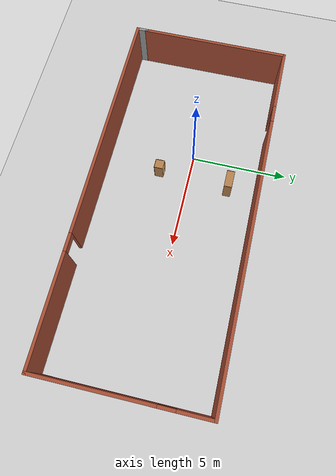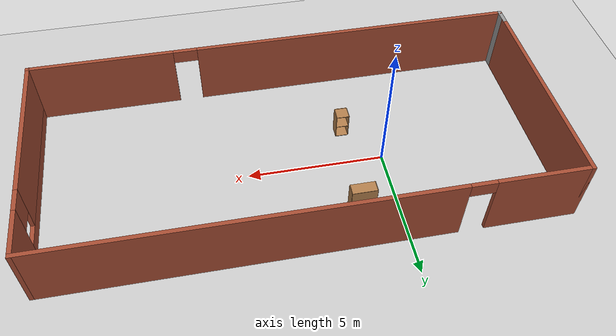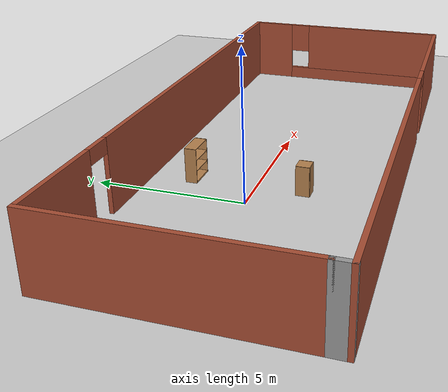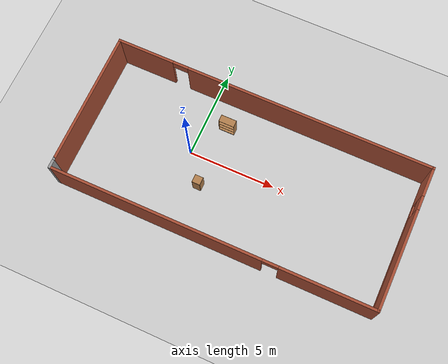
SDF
<sdf version="1.7">
 <world name="default">
  <light name="sun" type="directional">
   <pose>0 0 10 0 -0 0</pose>
   <diffuse>0.8 0.8 0.8 1</diffuse>
   <specular>0.2 0.2 0.2 1</specular>
   <attenuation>
    <range>1000</range>
    <constant>0.9</constant>
    <linear>0.01</linear>
    <quadratic>0.001</quadratic>
   </attenuation>
   <direction>-0.5 0.1 -0.9</direction>
   <spot><inner_angle>0</inner_angle><outer_angle>0</outer_angle><falloff>0</falloff></spot>
  </light>
  <model name="ground_plane">
   <static>1</static>
   <link name="link">
    <collision name="collision">
     <geometry><plane><normal>0 0 1</normal><size>100 100</size></plane></geometry>
     <surface><friction><ode><mu>100</mu><mu2>50</mu2></ode></friction></surface>
    </collision>
    <visual name="visual">
     <cast_shadows>0</cast_shadows>
     <geometry><plane><normal>0 0 1</normal><size>100 100</size></plane></geometry>
     <material>
      <script><uri>file://media/materials/scripts/gazebo.material</uri><name>Gazebo/Grey</name></script>
     </material>
    </visual>
   </link>
  </model>
  <gravity>0 0 -9.8</gravity>
  <magnetic_field>6e-06 2.3e-05 -4.2e-05</magnetic_field>
  <atmosphere type="adiabatic"/>
  <physics type="ode">
   <max_step_size>0.001</max_step_size>
   <real_time_factor>1</real_time_factor>
   <real_time_update_rate>1000</real_time_update_rate>
  </physics>
  <scene><ambient>0.4 0.4 0.4 1</ambient><background>0.7 0.7 0.7 1</background><shadows>1</shadows></scene>
  <audio><device>default</device></audio>
  <spherical_coordinates>
   <surface_model>EARTH_WGS84</surface_model>
   <latitude_deg>0</latitude_deg>
   <longitude_deg>0</longitude_deg>
   <elevation>0</elevation>
   <heading_deg>0</heading_deg>
  </spherical_coordinates>
  <model name="test">
   <pose>3.30211 -0.427776 0 0 -0 0</pose>
   <link name="Wall_3">
    <collision name="Wall_3_Collision">
     <geometry><box><size>7.75 0.15 2.5</size></box></geometry>
     <pose>0 0 1.25 0 -0 0</pose>
    </collision>
    <visual name="Wall_3_Visual">
     <pose>0 0 1.25 0 -0 0</pose>
     <geometry><box><size>7.75 0.15 2.5</size></box></geometry>
     <material>
      <script><uri>file://media/materials/scripts/gazebo.material</uri><name>Gazebo/Bricks</name></script>
      <ambient>1 1 1 1</ambient>
     </material>
     <meta><layer>0</layer></meta>
    </visual>
    <pose>-9.175 0.25 0 0 -0 1.5708</pose>
   </link>
   <link name="Wall_4">
    <pose>-0 4.05 0 0 -0 0</pose>
    <visual name="Wall_4_Visual_0">
     <pose>-7.57975 0 1.25 0 -0 0</pose>
     <geometry><box><size>3.3405 0.15 2.5</size></box></geometry>
     <material>
      <script><uri>file://media/materials/scripts/gazebo.material</uri><name>Gazebo/Bricks</name></script>
      <ambient>1 1 1 1</ambient>
     </material>
     <meta><layer>0</layer></meta>
    </visual>
    <collision name="Wall_4_Collision_0">
     <geometry><box><size>3.3405 0.15 2.5</size></box></geometry>
     <pose>-7.57975 0 1.25 0 -0 0</pose>
    </collision>
    <visual name="Wall_4_Visual_1">
     <pose>2.12025 0 1.25 0 -0 0</pose>
     <geometry><box><size>14.2595 0.15 2.5</size></box></geometry>
     <material>
      <script><uri>file://media/materials/scripts/gazebo.material</uri><name>Gazebo/Bricks</name></script>
      <ambient>1 1 1 1</ambient>
     </material>
     <meta><layer>0</layer></meta>
    </visual>
    <collision name="Wall_4_Collision_1">
     <geometry><box><size>14.2595 0.15 2.5</size></box></geometry>
     <pose>2.12025 0 1.25 0 -0 0</pose>
    </collision>
    <visual name="Wall_4_Visual_2">
     <pose>-5.4595 0 2.25 0 -0 0</pose>
     <geometry><box><size>0.9 0.15 0.5</size></box></geometry>
     <material>
      <script><uri>file://media/materials/scripts/gazebo.material</uri><name>Gazebo/Bricks</name></script>
      <ambient>1 1 1 1</ambient>
     </material>
     <meta><layer>0</layer></meta>
    </visual>
    <collision name="Wall_4_Collision_2">
     <geometry><box><size>0.9 0.15 0.5</size></box></geometry>
     <pose>-5.4595 0 2.25 0 -0 0</pose>
    </collision>
   </link>
   <link name="Wall_5">
    <pose>9.175 0 0 0 -0 -1.5708</pose>
    <visual name="Wall_5_Visual_0">
     <pose>-3.26118 0 1.25 0 -0 0</pose>
     <geometry><box><size>1.72765 0.15 2.5</size></box></geometry>
     <material>
      <script><uri>file://media/materials/scripts/gazebo.material</uri><name>Gazebo/Bricks</name></script>
      <ambient>1 1 1 1</ambient>
     </material>
     <meta><layer>0</layer></meta>
    </visual>
    <collision name="Wall_5_Collision_0">
     <geometry><box><size>1.72765 0.15 2.5</size></box></geometry>
     <pose>-3.26118 0 1.25 0 -0 0</pose>
    </collision>
    <visual name="Wall_5_Visual_1">
     <pose>0.863823 0 0.25 0 -0 0</pose>
     <geometry><box><size>6.52235 0.15 0.5</size></box></geometry>
     <material>
      <script><uri>file://media/materials/scripts/gazebo.material</uri><name>Gazebo/Bricks</name></script>
      <ambient>1 1 1 1</ambient>
     </material>
     <meta><layer>0</layer></meta>
    </visual>
    <collision name="Wall_5_Collision_1">
     <geometry><box><size>6.52235 0.15 0.5</size></box></geometry>
     <pose>0.863823 0 0.25 0 -0 0</pose>
    </collision>
    <visual name="Wall_5_Visual_2">
     <pose>1.26382 0 1.5 0 -0 0</pose>
     <geometry><box><size>5.72235 0.15 2</size></box></geometry>
     <material>
      <script><uri>file://media/materials/scripts/gazebo.material</uri><name>Gazebo/Bricks</name></script>
      <ambient>1 1 1 1</ambient>
     </material>
     <meta><layer>0</layer></meta>
    </visual>
    <collision name="Wall_5_Collision_2">
     <geometry><box><size>5.72235 0.15 2</size></box></geometry>
     <pose>1.26382 0 1.5 0 -0 0</pose>
    </collision>
    <visual name="Wall_5_Visual_3">
     <pose>-1.99735 0 1.9 0 -0 0</pose>
     <geometry><box><size>0.8 0.15 1.2</size></box></geometry>
     <material>
      <script><uri>file://media/materials/scripts/gazebo.material</uri><name>Gazebo/Bricks</name></script>
      <ambient>1 1 1 1</ambient>
     </material>
     <meta><layer>0</layer></meta>
    </visual>
    <collision name="Wall_5_Collision_3">
     <geometry><box><size>0.8 0.15 1.2</size></box></geometry>
     <pose>-1.99735 0 1.9 0 -0 0</pose>
    </collision>
   </link>
   <link name="Wall_6">
    <pose>-0 -4.05 0 0 -0 3.14159</pose>
    <visual name="Wall_6_Visual_0">
     <pose>-6.54054 0 1.25 0 -0 0</pose>
     <geometry><box><size>5.41893 0.15 2.5</size></box></geometry>
     <material>
      <script><uri>file://media/materials/scripts/gazebo.material</uri><name>Gazebo/Bricks</name></script>
      <ambient>1 1 1 1</ambient>
     </material>
     <meta><layer>0</layer></meta>
    </visual>
    <collision name="Wall_6_Collision_0">
     <geometry><box><size>5.41893 0.15 2.5</size></box></geometry>
     <pose>-6.54054 0 1.25 0 -0 0</pose>
    </collision>
    <visual name="Wall_6_Visual_1">
     <pose>3.15946 0 1.25 0 -0 0</pose>
     <geometry><box><size>12.1811 0.15 2.5</size></box></geometry>
     <material>
      <script><uri>file://media/materials/scripts/gazebo.material</uri><name>Gazebo/Bricks</name></script>
      <ambient>1 1 1 1</ambient>
     </material>
     <meta><layer>0</layer></meta>
    </visual>
    <collision name="Wall_6_Collision_1">
     <geometry><box><size>12.1811 0.15 2.5</size></box></geometry>
     <pose>3.15946 0 1.25 0 -0 0</pose>
    </collision>
    <visual name="Wall_6_Visual_2">
     <pose>-3.38107 0 2.25 0 -0 0</pose>
     <geometry><box><size>0.9 0.15 0.5</size></box></geometry>
     <material>
      <script><uri>file://media/materials/scripts/gazebo.material</uri><name>Gazebo/Bricks</name></script>
      <ambient>1 1 1 1</ambient>
     </material>
     <meta><layer>0</layer></meta>
    </visual>
    <collision name="Wall_6_Collision_2">
     <geometry><box><size>0.9 0.15 0.5</size></box></geometry>
     <pose>-3.38107 0 2.25 0 -0 0</pose>
    </collision>
   </link>
   <link name="Wall_7">
    <collision name="Wall_7_Collision">
     <geometry><box><size>0.65 0.15 2.5</size></box></geometry>
     <pose>0 0 1.25 0 -0 0</pose>
    </collision>
    <visual name="Wall_7_Visual">
     <pose>0 0 1.25 0 -0 0</pose>
     <geometry><box><size>0.65 0.15 2.5</size></box></geometry>
     <material>
      <script><uri>file://media/materials/scripts/gazebo.material</uri><name>Gazebo/Grey</name></script>
      <ambient>1 1 1 1</ambient>
     </material>
     <meta><layer>0</layer></meta>
    </visual>
    <pose>-9.175 -3.8 0 0 -0 1.5708</pose>
   </link>
   <link name="Wall_8">
    <collision name="Wall_8_Collision">
     <geometry><box><size>0.15 0.15 2.5</size></box></geometry>
     <pose>0 0 1.25 0 -0 0</pose>
    </collision>
    <visual name="Wall_8_Visual">
     <pose>0 0 1.25 0 -0 0</pose>
     <geometry><box><size>0.15 0.15 2.5</size></box></geometry>
     <material>
      <script><uri>file://media/materials/scripts/gazebo.material</uri><name>Gazebo/Grey</name></script>
      <ambient>1 1 1 1</ambient>
     </material>
     <meta><layer>0</layer></meta>
    </visual>
    <pose>-9.175 -3.55 0 0 -0 0</pose>
   </link>
   <link name="Wall_9">
    <collision name="Wall_9_Collision">
     <geometry><box><size>0.15 0.15 2.5</size></box></geometry>
     <pose>0 0 1.25 0 -0 0</pose>
    </collision>
    <visual name="Wall_9_Visual">
     <pose>0 0 1.25 0 -0 0</pose>
     <geometry><box><size>0.15 0.15 2.5</size></box></geometry>
     <material>
      <script><uri>file://media/materials/scripts/gazebo.material</uri><name>Gazebo/Grey</name></script>
      <ambient>1 1 1 1</ambient>
     </material>
     <meta><layer>0</layer></meta>
    </visual>
    <pose>-9.175 -3.55 0 0 -0 0</pose>
   </link>
   <static>1</static>
  </model>
  <model name="bookshelf">
   <static>1</static>
   <link name="link">
    <inertial><mass>1</mass></inertial>
    <collision name="back">
     <pose>0 0.005 0.6 0 -0 0</pose>
     <geometry><box><size>0.9 0.01 1.2</size></box></geometry>
    </collision>
    <visual name="visual1">
     <pose>0 0.005 0.6 0 -0 0</pose>
     <geometry><box><size>0.9 0.01 1.2</size></box></geometry>
     <material>
      <script><uri>file://media/materials/scripts/gazebo.material</uri><name>Gazebo/Wood</name></script>
     </material>
    </visual>
    <collision name="left_side">
     <pose>0.45 -0.195 0.6 0 -0 0</pose>
     <geometry><box><size>0.02 0.4 1.2</size></box></geometry>
    </collision>
    <visual name="visual2">
     <pose>0.45 -0.195 0.6 0 -0 0</pose>
     <geometry><box><size>0.02 0.4 1.2</size></box></geometry>
     <material>
      <script><uri>file://media/materials/scripts/gazebo.material</uri><name>Gazebo/Wood</name></script>
     </material>
    </visual>
    <collision name="right_side">
     <pose>-0.45 -0.195 0.6 0 -0 0</pose>
     <geometry><box><size>0.02 0.4 1.2</size></box></geometry>
    </collision>
    <visual name="visual3">
     <pose>-0.45 -0.195 0.6 0 -0 0</pose>
     <geometry><box><size>0.02 0.4 1.2</size></box></geometry>
     <material>
      <script><uri>file://media/materials/scripts/gazebo.material</uri><name>Gazebo/Wood</name></script>
     </material>
    </visual>
    <collision name="bottom">
     <pose>0 -0.195 0.03 0 -0 0</pose>
     <geometry><box><size>0.88 0.4 0.06</size></box></geometry>
    </collision>
    <visual name="visual4">
     <pose>0 -0.195 0.03 0 -0 0</pose>
     <geometry><box><size>0.88 0.4 0.06</size></box></geometry>
     <material>
      <script><uri>file://media/materials/scripts/gazebo.material</uri><name>Gazebo/Wood</name></script>
     </material>
    </visual>
    <collision name="top">
     <pose>0 -0.195 1.19 0 -0 0</pose>
     <geometry><box><size>0.88 0.4 0.02</size></box></geometry>
    </collision>
    <visual name="visual5">
     <pose>0 -0.195 1.19 0 -0 0</pose>
     <geometry><box><size>0.88 0.4 0.02</size></box></geometry>
     <material>
      <script><uri>file://media/materials/scripts/gazebo.material</uri><name>Gazebo/Wood</name></script>
     </material>
    </visual>
    <collision name="low_shelf">
     <pose>0 -0.195 0.43 0 -0 0</pose>
     <geometry><box><size>0.88 0.4 0.02</size></box></geometry>
    </collision>
    <visual name="visual6">
     <pose>0 -0.195 0.43 0 -0 0</pose>
     <geometry><box><size>0.88 0.4 0.02</size></box></geometry>
     <material>
      <script><uri>file://media/materials/scripts/gazebo.material</uri><name>Gazebo/Wood</name></script>
     </material>
    </visual>
    <collision name="high_shelf">
     <pose>0 -0.195 0.8 0 -0 0</pose>
     <geometry><box><size>0.88 0.4 0.02</size></box></geometry>
    </collision>
    <visual name="visual7">
     <pose>0 -0.195 0.8 0 -0 0</pose>
     <geometry><box><size>0.88 0.4 0.02</size></box></geometry>
     <material>
      <script><uri>file://media/materials/scripts/gazebo.material</uri><name>Gazebo/Wood</name></script>
     </material>
    </visual>
   </link>
   <pose>1.30768 2.3337 0 0 -0 0</pose>
  </model>
  <model name="cabinet">
   <static>1</static>
   <link name="cabinet_bottom_plate">
    <inertial>
     <pose>0 0 -1 0 -0 0</pose>
     <inertia><ixx>2.05</ixx><ixy>0</ixy><ixz>0</ixz><iyy>2.05</iyy><iyz>0</iyz><izz>2.05</izz></inertia>
     <mass>25</mass>
    </inertial>
    <collision name="cabinet_bottom_plate_geom">
     <pose>0 0 0.01 0 -0 0</pose>
     <geometry><box><size>0.45 0.45 0.02</size></box></geometry>
    </collision>
    <visual name="cabinet_bottom_plate_geom_visual">
     <pose>0 0 0.01 0 -0 0</pose>
     <geometry><box><size>0.45 0.45 0.02</size></box></geometry>
     <material>
      <script><uri>file://media/materials/scripts/gazebo.material</uri><name>Gazebo/Wood</name></script>
     </material>
    </visual>
    <collision name="cabinet_bottom_plate_geom_cabinet_back_plate">
     <pose>0.235 0 0.51 0 -0 0</pose>
     <geometry><box><size>0.02 0.45 1.02</size></box></geometry>
    </collision>
    <visual name="cabinet_bottom_plate_geom_cabinet_back_plate_visual">
     <pose>0.235 0 0.51 0 -0 0</pose>
     <geometry><box><size>0.02 0.45 1.02</size></box></geometry>
     <material>
      <script><uri>file://media/materials/scripts/gazebo.material</uri><name>Gazebo/Wood</name></script>
     </material>
    </visual>
    <collision name="cabinet_bottom_plate_geom_cabinet_left_plate">
     <pose>0 0.235 0.51 0 -0 0</pose>
     <geometry><box><size>0.45 0.02 1.02</size></box></geometry>
    </collision>
    <visual name="cabinet_bottom_plate_geom_cabinet_left_plate_visual">
     <pose>0 0.235 0.51 0 -0 0</pose>
     <geometry><box><size>0.45 0.02 1.02</size></box></geometry>
     <material>
      <script><uri>file://media/materials/scripts/gazebo.material</uri><name>Gazebo/Wood</name></script>
     </material>
    </visual>
    <collision name="cabinet_bottom_plate_geom_cabinet_middle_plate">
     <pose>0 0 0.51 0 -0 0</pose>
     <geometry><box><size>0.45 0.45 0.02</size></box></geometry>
    </collision>
    <visual name="cabinet_bottom_plate_geom_cabinet_middle_plate_visual">
     <pose>0 0 0.51 0 -0 0</pose>
     <geometry><box><size>0.45 0.45 0.02</size></box></geometry>
     <material>
      <script><uri>file://media/materials/scripts/gazebo.material</uri><name>Gazebo/Wood</name></script>
     </material>
    </visual>
    <collision name="cabinet_bottom_plate_geom_cabinet_right_plate">
     <pose>0 -0.235 0.51 0 -0 0</pose>
     <geometry><box><size>0.45 0.02 1.02</size></box></geometry>
    </collision>
    <visual name="cabinet_bottom_plate_geom_cabinet_right_plate_visual">
     <pose>0 -0.235 0.51 0 -0 0</pose>
     <geometry><box><size>0.45 0.02 1.02</size></box></geometry>
     <material>
      <script><uri>file://media/materials/scripts/gazebo.material</uri><name>Gazebo/Wood</name></script>
     </material>
    </visual>
    <collision name="cabinet_bottom_plate_geom_cabinet_top_plate">
     <pose>0 0 1.01 0 -0 0</pose>
     <geometry><box><size>0.45 0.45 0.02</size></box></geometry>
    </collision>
    <visual name="cabinet_bottom_plate_geom_cabinet_top_plate_visual">
     <pose>0 0 1.01 0 -0 0</pose>
     <geometry><box><size>0.45 0.45 0.02</size></box></geometry>
     <material>
      <script><uri>file://media/materials/scripts/gazebo.material</uri><name>Gazebo/Wood</name></script>
     </material>
    </visual>
   </link>
   <pose>1.2047 -1.56963 0 0 0 -1.57778</pose>
  </model>
 </world>
</sdf>
